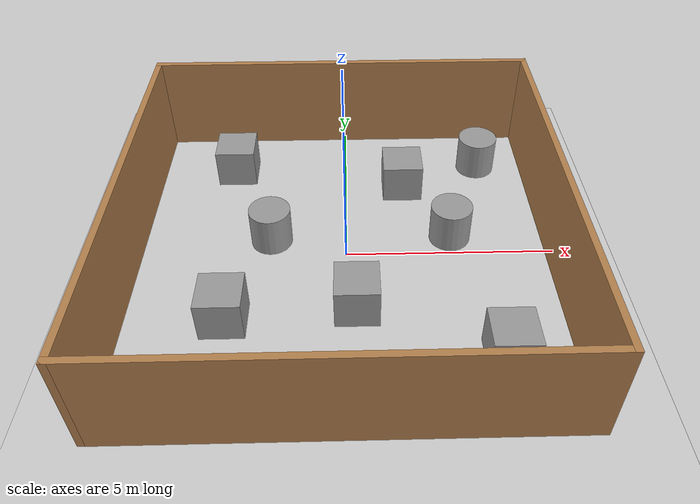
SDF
<sdf version="1.7">
 <world name="default">
  <light name="sun" type="directional">
   <pose>0 0 10 0 -0 0</pose>
   <diffuse>0.8 0.8 0.8 1</diffuse>
   <specular>0.2 0.2 0.2 1</specular>
   <attenuation>
    <range>1000</range>
    <constant>0.9</constant>
    <linear>0.01</linear>
    <quadratic>0.001</quadratic>
   </attenuation>
   <direction>-0.5 0.1 -0.9</direction>
   <spot><inner_angle>0</inner_angle><outer_angle>0</outer_angle><falloff>0</falloff></spot>
  </light>
  <model name="ground_plane">
   <static>1</static>
   <link name="link">
    <collision name="collision">
     <geometry><plane><normal>0 0 1</normal><size>100 100</size></plane></geometry>
     <surface><friction><ode><mu>100</mu><mu2>50</mu2></ode></friction></surface>
    </collision>
    <visual name="visual">
     <cast_shadows>0</cast_shadows>
     <geometry><plane><normal>0 0 1</normal><size>100 100</size></plane></geometry>
     <material>
      <script><uri>file://media/materials/scripts/gazebo.material</uri><name>Gazebo/Grey</name></script>
     </material>
    </visual>
   </link>
  </model>
  <gravity>0 0 -9.8</gravity>
  <magnetic_field>6e-06 2.3e-05 -4.2e-05</magnetic_field>
  <atmosphere type="adiabatic"/>
  <physics type="ode">
   <max_step_size>0.001</max_step_size>
   <real_time_factor>1</real_time_factor>
   <real_time_update_rate>1000</real_time_update_rate>
  </physics>
  <scene><ambient>0.4 0.4 0.4 1</ambient><background>0.7 0.7 0.7 1</background><shadows>1</shadows></scene>
  <audio><device>default</device></audio>
  <spherical_coordinates>
   <surface_model>EARTH_WGS84</surface_model>
   <latitude_deg>0</latitude_deg>
   <longitude_deg>0</longitude_deg>
   <elevation>0</elevation>
   <heading_deg>0</heading_deg>
  </spherical_coordinates>
  <model name="room2">
   <pose>-0.049985 -0.009412 0 0 -0 0</pose>
   <link name="Wall_4">
    <collision name="Wall_4_Collision">
     <geometry><box><size>10 0.15 2.5</size></box></geometry>
     <pose>0 0 1.25 0 -0 0</pose>
    </collision>
    <visual name="Wall_4_Visual">
     <pose>0 0 1.25 0 -0 0</pose>
     <geometry><box><size>10 0.15 2.5</size></box></geometry>
     <material>
      <script><uri>file://media/materials/scripts/gazebo.material</uri><name>Gazebo/Wood</name></script>
      <ambient>1 1 1 1</ambient>
     </material>
     <meta><layer>0</layer></meta>
    </visual>
    <pose>-0 4.925 0 0 -0 0</pose>
   </link>
   <link name="Wall_5">
    <collision name="Wall_5_Collision">
     <geometry><box><size>10 0.15 2.5</size></box></geometry>
     <pose>0 0 1.25 0 -0 0</pose>
    </collision>
    <visual name="Wall_5_Visual">
     <pose>0 0 1.25 0 -0 0</pose>
     <geometry><box><size>10 0.15 2.5</size></box></geometry>
     <material>
      <script><uri>file://media/materials/scripts/gazebo.material</uri><name>Gazebo/Wood</name></script>
      <ambient>1 1 1 1</ambient>
     </material>
     <meta><layer>0</layer></meta>
    </visual>
    <pose>4.925 -0 0 0 -0 -1.5708</pose>
   </link>
   <link name="Wall_6">
    <collision name="Wall_6_Collision">
     <geometry><box><size>10 0.15 2.5</size></box></geometry>
     <pose>0 0 1.25 0 -0 0</pose>
    </collision>
    <visual name="Wall_6_Visual">
     <pose>0 0 1.25 0 -0 0</pose>
     <geometry><box><size>10 0.15 2.5</size></box></geometry>
     <material>
      <script><uri>file://media/materials/scripts/gazebo.material</uri><name>Gazebo/Wood</name></script>
      <ambient>1 1 1 1</ambient>
     </material>
     <meta><layer>0</layer></meta>
    </visual>
    <pose>-0 -4.925 0 0 -0 3.14159</pose>
   </link>
   <link name="Wall_7">
    <collision name="Wall_7_Collision">
     <geometry><box><size>10 0.15 2.5</size></box></geometry>
     <pose>0 0 1.25 0 -0 0</pose>
    </collision>
    <visual name="Wall_7_Visual">
     <pose>0 0 1.25 0 -0 0</pose>
     <geometry><box><size>10 0.15 2.5</size></box></geometry>
     <material>
      <script><uri>file://media/materials/scripts/gazebo.material</uri><name>Gazebo/Wood</name></script>
      <ambient>1 1 1 1</ambient>
     </material>
     <meta><layer>0</layer></meta>
    </visual>
    <pose>-4.925 -0 0 0 -0 1.5708</pose>
   </link>
   <static>1</static>
  </model>
  <model name="unit_cylinder">
   <pose>-1.8198 0.546413 0.499998 3e-06 -4e-06 0</pose>
   <link name="link">
    <inertial>
     <mass>1</mass>
     <inertia><ixx>0.145833</ixx><ixy>0</ixy><ixz>0</ixz><iyy>0.145833</iyy><iyz>0</iyz><izz>0.125</izz></inertia>
    </inertial>
    <collision name="collision">
     <geometry><cylinder><radius>0.5</radius><length>1</length></cylinder></geometry>
    </collision>
    <visual name="visual">
     <geometry><cylinder><radius>0.5</radius><length>1</length></cylinder></geometry>
     <material>
      <script><name>Gazebo/Grey</name><uri>file://media/materials/scripts/gazebo.material</uri></script>
     </material>
    </visual>
   </link>
  </model>
  <model name="unit_box">
   <pose>1.48059 2.52636 0.499995 0 1e-05 0</pose>
   <link name="link">
    <inertial>
     <mass>1</mass>
     <inertia>
      <ixx>0.166667</ixx>
      <ixy>0</ixy>
      <ixz>0</ixz>
      <iyy>0.166667</iyy>
      <iyz>0</iyz>
      <izz>0.166667</izz>
     </inertia>
    </inertial>
    <collision name="collision"><geometry><box><size>1 1 1</size></box></geometry></collision>
    <visual name="visual">
     <geometry><box><size>1 1 1</size></box></geometry>
     <material>
      <script><name>Gazebo/Grey</name><uri>file://media/materials/scripts/gazebo.material</uri></script>
     </material>
    </visual>
   </link>
  </model>
  <model name="unit_box_0">
   <pose>-2.89909 3.28981 0.499995 -1e-05 -0 -0</pose>
   <link name="link">
    <inertial>
     <mass>1</mass>
     <inertia>
      <ixx>0.166667</ixx>
      <ixy>0</ixy>
      <ixz>0</ixz>
      <iyy>0.166667</iyy>
      <iyz>0</iyz>
      <izz>0.166667</izz>
     </inertia>
    </inertial>
    <collision name="collision"><geometry><box><size>1 1 1</size></box></geometry></collision>
    <visual name="visual">
     <geometry><box><size>1 1 1</size></box></geometry>
     <material>
      <script><name>Gazebo/Grey</name><uri>file://media/materials/scripts/gazebo.material</uri></script>
     </material>
    </visual>
   </link>
  </model>
  <model name="unit_cylinder_0">
   <pose>2.54586 0.565347 0.499992 -3e-06 -4e-06 -0</pose>
   <link name="link">
    <inertial>
     <mass>1</mass>
     <inertia><ixx>0.145833</ixx><ixy>0</ixy><ixz>0</ixz><iyy>0.145833</iyy><iyz>0</iyz><izz>0.125</izz></inertia>
    </inertial>
    <collision name="collision">
     <geometry><cylinder><radius>0.5</radius><length>1</length></cylinder></geometry>
    </collision>
    <visual name="visual">
     <geometry><cylinder><radius>0.5</radius><length>1</length></cylinder></geometry>
     <material>
      <script><name>Gazebo/Grey</name><uri>file://media/materials/scripts/gazebo.material</uri></script>
     </material>
    </visual>
   </link>
  </model>
  <model name="unit_box_1">
   <pose>0.226039 -1.74409 0.499995 -1e-05 -0 -0</pose>
   <link name="link">
    <inertial>
     <mass>1</mass>
     <inertia>
      <ixx>0.166667</ixx>
      <ixy>0</ixy>
      <ixz>0</ixz>
      <iyy>0.166667</iyy>
      <iyz>0</iyz>
      <izz>0.166667</izz>
     </inertia>
    </inertial>
    <collision name="collision"><geometry><box><size>1 1 1</size></box></geometry></collision>
    <visual name="visual">
     <geometry><box><size>1 1 1</size></box></geometry>
     <material>
      <script><name>Gazebo/Grey</name><uri>file://media/materials/scripts/gazebo.material</uri></script>
     </material>
    </visual>
   </link>
  </model>
  <model name="unit_box_2">
   <pose>-2.68426 -2.02076 0.499995 0 1e-05 0</pose>
   <link name="link">
    <inertial>
     <mass>1</mass>
     <inertia>
      <ixx>0.166667</ixx>
      <ixy>0</ixy>
      <ixz>0</ixz>
      <iyy>0.166667</iyy>
      <iyz>0</iyz>
      <izz>0.166667</izz>
     </inertia>
    </inertial>
    <collision name="collision"><geometry><box><size>1 1 1</size></box></geometry></collision>
    <visual name="visual">
     <geometry><box><size>1 1 1</size></box></geometry>
     <material>
      <script><name>Gazebo/Grey</name><uri>file://media/materials/scripts/gazebo.material</uri></script>
     </material>
    </visual>
   </link>
  </model>
  <model name="unit_box_3">
   <pose>3.37148 -3.14982 0.499995 -1e-05 -0 0</pose>
   <link name="link">
    <inertial>
     <mass>1</mass>
     <inertia>
      <ixx>0.166667</ixx>
      <ixy>0</ixy>
      <ixz>0</ixz>
      <iyy>0.166667</iyy>
      <iyz>0</iyz>
      <izz>0.166667</izz>
     </inertia>
    </inertial>
    <collision name="collision"><geometry><box><size>1 1 1</size></box></geometry></collision>
    <visual name="visual">
     <geometry><box><size>1 1 1</size></box></geometry>
     <material>
      <script><name>Gazebo/Grey</name><uri>file://media/materials/scripts/gazebo.material</uri></script>
     </material>
    </visual>
   </link>
  </model>
  <model name="unit_cylinder_1">
   <pose>3.57562 3.41747 0.499997 3e-06 4e-06 -0</pose>
   <link name="link">
    <inertial>
     <mass>1</mass>
     <inertia><ixx>0.145833</ixx><ixy>0</ixy><ixz>0</ixz><iyy>0.145833</iyy><iyz>0</iyz><izz>0.125</izz></inertia>
    </inertial>
    <collision name="collision">
     <geometry><cylinder><radius>0.5</radius><length>1</length></cylinder></geometry>
    </collision>
    <visual name="visual">
     <geometry><cylinder><radius>0.5</radius><length>1</length></cylinder></geometry>
     <material>
      <script><name>Gazebo/Grey</name><uri>file://media/materials/scripts/gazebo.material</uri></script>
     </material>
    </visual>
   </link>
  </model>
 </world>
</sdf>
